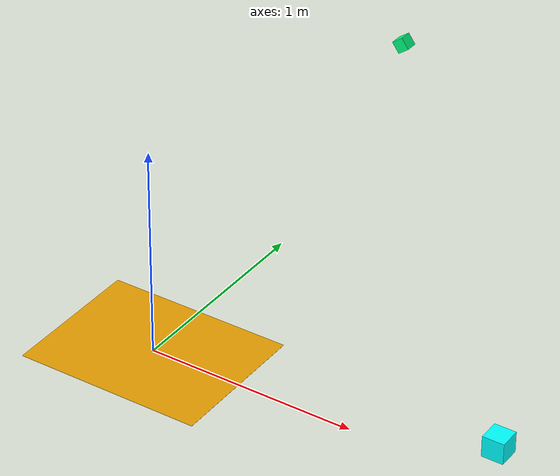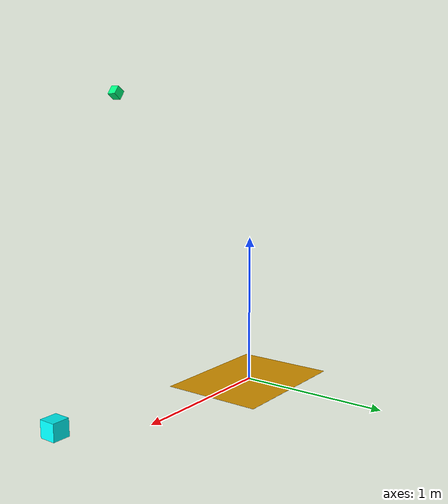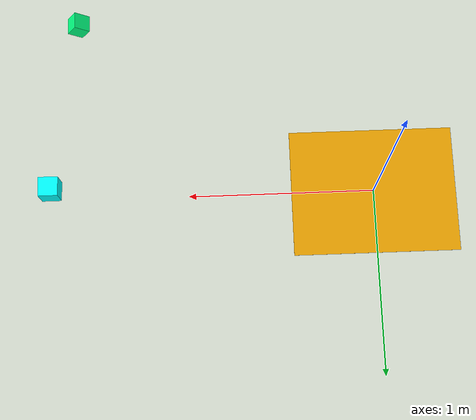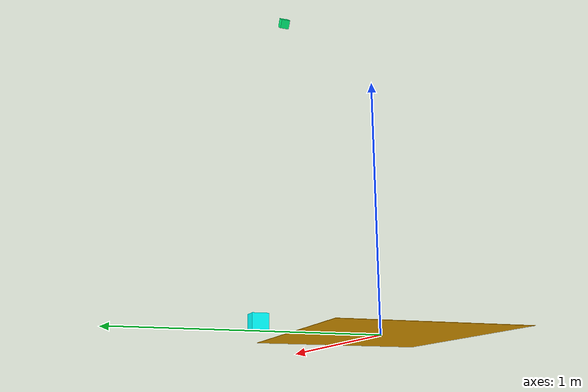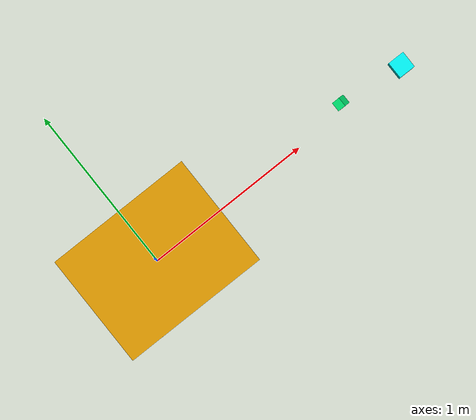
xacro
<?xml version="1.0"?>
<robot xmlns:xacro="http://ros.org/wiki/xacro"
		name="lxind">

    <!-- servo4: smaller robot -->

	<!-- const -->
	<xacro:property name="M_PI" value="3.1415926" />

	<!-- base -->
	<link name="base_footprint">
		<visual>
			<geometry>
				<box size="0.892 0.692 0.001" />
			</geometry>
		</visual>
	</link>

	<link name="base_link">
		<visual>
			<geometry>
				<box size="0.892 0.692 0.001" />
			</geometry>
			<material name="green">
				<color rgba="0 1 0 1" />
			</material>
		</visual>
	</link>

	<link name="laser_link">
		<visual>
			<geometry>
				<box size="0.1 0.1 0.1" />
			</geometry>
			<material name="gb">
				<color rgba="0 1 1 1" />
			</material>
		</visual>
	</link>

<!-- ifm camera -->
	<link name="ifm3d/camera_link">
		<visual>
			<geometry>
				<box size="0.05 0.05 0.05" />
			</geometry>
			<material name="g05b">
				<color rgba="0 1 0.5 1" />
			</material>
		</visual>
	</link>

<!-- JOINTS -->
	<joint name="base_joint" type="fixed">
		<origin rpy="0 0 0" xyz="0 0 0" />
		<parent link="base_footprint" />
		<child link="base_link" />
	</joint>  <!-- AT TOP SURF===> NOW: FLOOR same -->

	<joint name="base_laser_joint" type="fixed">
		<origin rpy="0 0 0" xyz="1.70 0 0.228" />   <!-- xy offset from centre of driving wheel -->
		<parent link="base_link" />
		<child link="laser_link" />
	</joint>

	<joint name="base_ifm_joint" type="fixed">
		<origin rpy="0 ${M_PI*0.3} 0" xyz="1.2 0 1.9" /> <!-- around red/green/blue axis -->
            <!--  around y axis(minus ->toward ground), x(ros axis), z  ${M_PI/4} -->
		<parent link="base_link" />
		<child link="ifm3d/camera_link" />
	</joint>
</robot>
